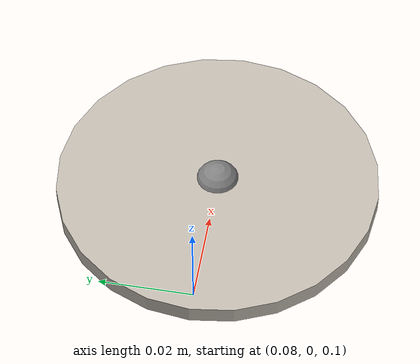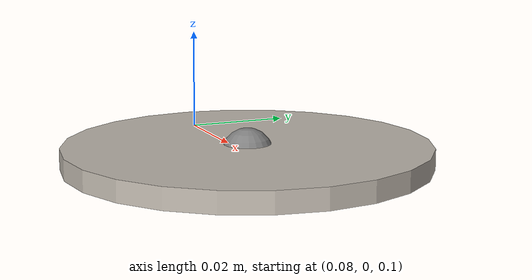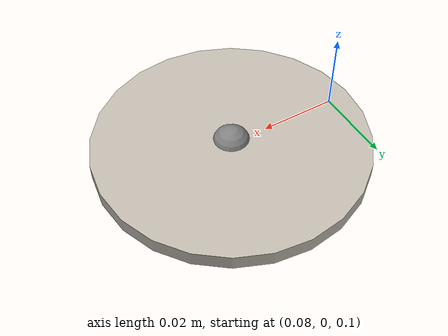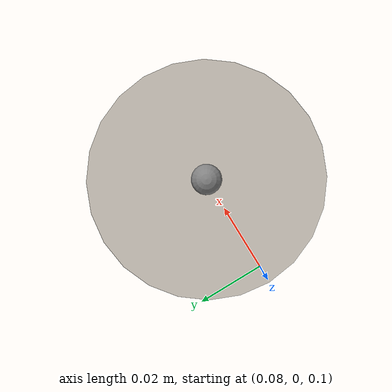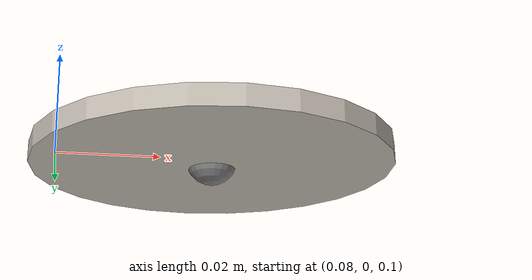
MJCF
<mujoco>
  <asset>
    <texture name="cube" type="cube"
      fileup="reorientation_cube_textures/fileup.png"
      fileback="reorientation_cube_textures/fileback.png"
      filedown="reorientation_cube_textures/filedown.png"
      filefront="reorientation_cube_textures/filefront.png"
      fileleft="reorientation_cube_textures/fileleft.png"
      fileright="reorientation_cube_textures/fileright.png" />
    <material name="cube" texture="cube" />
    <texture name="graycube" type="cube"
      fileup="reorientation_cube_textures/grayup.png"
      fileback="reorientation_cube_textures/grayback.png"
      filedown="reorientation_cube_textures/graydown.png"
      filefront="reorientation_cube_textures/grayfront.png"
      fileleft="reorientation_cube_textures/grayleft.png"
      fileright="reorientation_cube_textures/grayright.png" />
    <material name="graycube" texture="graycube" />
  </asset>
  <worldbody>
    <light pos="0 0 1" />
    <body name="cookie" pos="0.11 0.0 0.1" quat="1 0 0 0">
      <freejoint />
      <!-- tighter (less soft) contact solver parameters to improve cookie's collision given its low thickness! -->
      <geom name="cookie" type="cylinder" size=".035 .002 0" material="cube" solimp="0.9 0.95 0.001" solref="0.005 1"/>
      <site name="cookie"/>
    </body>
  </worldbody>
</mujoco>
